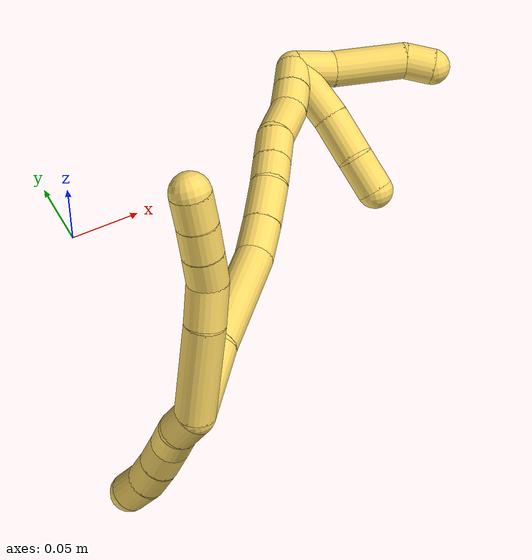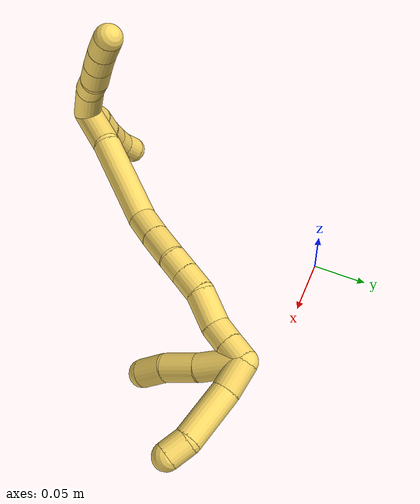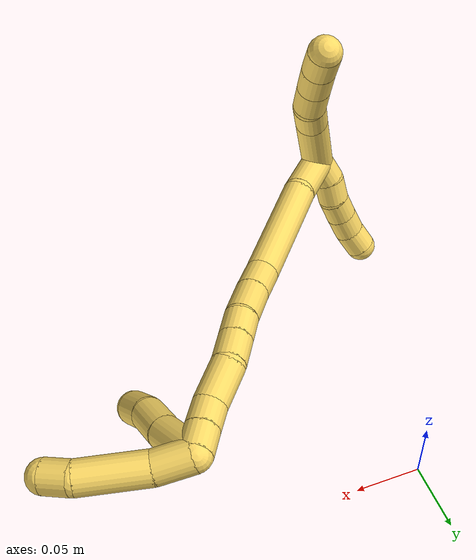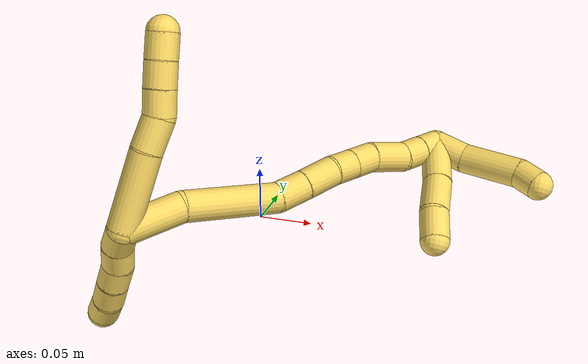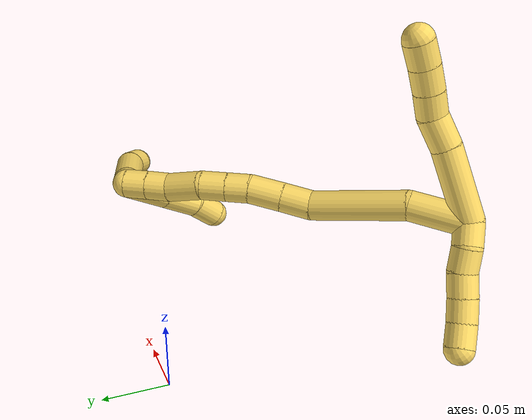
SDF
<sdf version="1.7">
 <world name="default">
  <model name="5">
   <static>0</static>
   <link name="5">
    <collision name="collision-cylinder-e_1_2_8">
     <pose>0.010798 -0.006581 0.02871 0.225347 0.351373 0.040167</pose>
     <geometry><cylinder><radius>0.0125</radius><length>0.062742</length></cylinder></geometry>
     <surface>
      <friction><ode><mu>1.16</mu><mu2>1.16</mu2><slip1>0</slip1><slip2>0</slip2></ode></friction>
      <contact><ode><kp>1e+06</kp><kd>1</kd><max_vel>0</max_vel><min_depth>0.001</min_depth></ode></contact>
     </surface>
    </collision>
    <visual name="visual-cylinder-e_1_2_8">
     <pose>0.010798 -0.006581 0.02871 0.225347 0.351373 0.040167</pose>
     <geometry><cylinder><radius>0.0125</radius><length>0.062742</length></cylinder></geometry>
     <material><ambient>1 0.858824 0.4 1</ambient></material>
    </visual>
    <collision name="collision-cylinder-e_2_8_9">
     <pose>0.025761 -0.014407 0.070029 0.098369 0.317656 0.015769</pose>
     <geometry><cylinder><radius>0.0125</radius><length>0.026677</length></cylinder></geometry>
     <surface>
      <friction><ode><mu>1.16</mu><mu2>1.16</mu2><slip1>0</slip1><slip2>0</slip2></ode></friction>
      <contact><ode><kp>1e+06</kp><kd>1</kd><max_vel>0</max_vel><min_depth>0.001</min_depth></ode></contact>
     </surface>
    </collision>
    <visual name="visual-cylinder-e_2_8_9">
     <pose>0.025761 -0.014407 0.070029 0.098369 0.317656 0.015769</pose>
     <geometry><cylinder><radius>0.0125</radius><length>0.026677</length></cylinder></geometry>
     <material><ambient>1 0.858824 0.4 1</ambient></material>
    </visual>
    <collision name="collision-cylinder-e_3_9_10">
     <pose>0.031098 -0.019345 0.092057 0.373682 0.11523 0.021807</pose>
     <geometry><cylinder><radius>0.0125</radius><length>0.020368</length></cylinder></geometry>
     <surface>
      <friction><ode><mu>1.16</mu><mu2>1.16</mu2><slip1>0</slip1><slip2>0</slip2></ode></friction>
      <contact><ode><kp>1e+06</kp><kd>1</kd><max_vel>0</max_vel><min_depth>0.001</min_depth></ode></contact>
     </surface>
    </collision>
    <visual name="visual-cylinder-e_3_9_10">
     <pose>0.031098 -0.019345 0.092057 0.373682 0.11523 0.021807</pose>
     <geometry><cylinder><radius>0.0125</radius><length>0.020368</length></cylinder></geometry>
     <material><ambient>1 0.858824 0.4 1</ambient></material>
    </visual>
    <collision name="collision-cylinder-e_4_10_11">
     <pose>0.033321 -0.026276 0.110974 0.328631 0.104483 0.01734</pose>
     <geometry><cylinder><radius>0.0125</radius><length>0.02018</length></cylinder></geometry>
     <surface>
      <friction><ode><mu>1.16</mu><mu2>1.16</mu2><slip1>0</slip1><slip2>0</slip2></ode></friction>
      <contact><ode><kp>1e+06</kp><kd>1</kd><max_vel>0</max_vel><min_depth>0.001</min_depth></ode></contact>
     </surface>
    </collision>
    <visual name="visual-cylinder-e_4_10_11">
     <pose>0.033321 -0.026276 0.110974 0.328631 0.104483 0.01734</pose>
     <geometry><cylinder><radius>0.0125</radius><length>0.02018</length></cylinder></geometry>
     <material><ambient>1 0.858824 0.4 1</ambient></material>
    </visual>
    <collision name="collision-cylinder-e_5_11_6">
     <pose>0.035073 -0.032244 0.130084 0.276617 0.069847 0.009726</pose>
     <geometry><cylinder><radius>0.0125</radius><length>0.020033</length></cylinder></geometry>
     <surface>
      <friction><ode><mu>1.16</mu><mu2>1.16</mu2><slip1>0</slip1><slip2>0</slip2></ode></friction>
      <contact><ode><kp>1e+06</kp><kd>1</kd><max_vel>0</max_vel><min_depth>0.001</min_depth></ode></contact>
     </surface>
    </collision>
    <visual name="visual-cylinder-e_5_11_6">
     <pose>0.035073 -0.032244 0.130084 0.276617 0.069847 0.009726</pose>
     <geometry><cylinder><radius>0.0125</radius><length>0.020033</length></cylinder></geometry>
     <material><ambient>1 0.858824 0.4 1</ambient></material>
    </visual>
    <collision name="collision-cylinder-e_1_2_12">
     <pose>-0.006778 0.00497 -0.005419 -2.3994 -0.744716 1.57452</pose>
     <geometry><cylinder><radius>0.0125</radius><length>0.02</length></cylinder></geometry>
     <surface>
      <friction><ode><mu>1.16</mu><mu2>1.16</mu2><slip1>0</slip1><slip2>0</slip2></ode></friction>
      <contact><ode><kp>1e+06</kp><kd>1</kd><max_vel>0</max_vel><min_depth>0.001</min_depth></ode></contact>
     </surface>
    </collision>
    <visual name="visual-cylinder-e_1_2_12">
     <pose>-0.006778 0.00497 -0.005419 -2.3994 -0.744716 1.57452</pose>
     <geometry><cylinder><radius>0.0125</radius><length>0.02</length></cylinder></geometry>
     <material><ambient>1 0.858824 0.4 1</ambient></material>
    </visual>
    <collision name="collision-cylinder-e_2_12_13">
     <pose>-0.018157 0.01618 -0.017153 -2.36218 -0.478198 1.07127</pose>
     <geometry><cylinder><radius>0.0125</radius><length>0.02</length></cylinder></geometry>
     <surface>
      <friction><ode><mu>1.16</mu><mu2>1.16</mu2><slip1>0</slip1><slip2>0</slip2></ode></friction>
      <contact><ode><kp>1e+06</kp><kd>1</kd><max_vel>0</max_vel><min_depth>0.001</min_depth></ode></contact>
     </surface>
    </collision>
    <visual name="visual-cylinder-e_2_12_13">
     <pose>-0.018157 0.01618 -0.017153 -2.36218 -0.478198 1.07127</pose>
     <geometry><cylinder><radius>0.0125</radius><length>0.02</length></cylinder></geometry>
     <material><ambient>1 0.858824 0.4 1</ambient></material>
    </visual>
    <collision name="collision-cylinder-e_3_13_14">
     <pose>-0.028518 0.026788 -0.030379 -2.57789 -0.61378 1.66091</pose>
     <geometry><cylinder><radius>0.0125</radius><length>0.02</length></cylinder></geometry>
     <surface>
      <friction><ode><mu>1.16</mu><mu2>1.16</mu2><slip1>0</slip1><slip2>0</slip2></ode></friction>
      <contact><ode><kp>1e+06</kp><kd>1</kd><max_vel>0</max_vel><min_depth>0.001</min_depth></ode></contact>
     </surface>
    </collision>
    <visual name="visual-cylinder-e_3_13_14">
     <pose>-0.028518 0.026788 -0.030379 -2.57789 -0.61378 1.66091</pose>
     <geometry><cylinder><radius>0.0125</radius><length>0.02</length></cylinder></geometry>
     <material><ambient>1 0.858824 0.4 1</ambient></material>
    </visual>
    <collision name="collision-cylinder-e_4_14_15">
     <pose>-0.040338 0.035983 -0.043611 -2.4895 -0.651 1.569</pose>
     <geometry><cylinder><radius>0.0125</radius><length>0.02</length></cylinder></geometry>
     <surface>
      <friction><ode><mu>1.16</mu><mu2>1.16</mu2><slip1>0</slip1><slip2>0</slip2></ode></friction>
      <contact><ode><kp>1e+06</kp><kd>1</kd><max_vel>0</max_vel><min_depth>0.001</min_depth></ode></contact>
     </surface>
    </collision>
    <visual name="visual-cylinder-e_4_14_15">
     <pose>-0.040338 0.035983 -0.043611 -2.4895 -0.651 1.569</pose>
     <geometry><cylinder><radius>0.0125</radius><length>0.02</length></cylinder></geometry>
     <material><ambient>1 0.858824 0.4 1</ambient></material>
    </visual>
    <collision name="collision-cylinder-e_5_15_5">
     <pose>-0.05364 0.045844 -0.054646 -2.32331 -0.809952 1.55933</pose>
     <geometry><cylinder><radius>0.0125</radius><length>0.02</length></cylinder></geometry>
     <surface>
      <friction><ode><mu>1.16</mu><mu2>1.16</mu2><slip1>0</slip1><slip2>0</slip2></ode></friction>
      <contact><ode><kp>1e+06</kp><kd>1</kd><max_vel>0</max_vel><min_depth>0.001</min_depth></ode></contact>
     </surface>
    </collision>
    <visual name="visual-cylinder-e_5_15_5">
     <pose>-0.05364 0.045844 -0.054646 -2.32331 -0.809952 1.55933</pose>
     <geometry><cylinder><radius>0.0125</radius><length>0.02</length></cylinder></geometry>
     <material><ambient>1 0.858824 0.4 1</ambient></material>
    </visual>
    <collision name="collision-cylinder-e_1_2_16">
     <pose>0.009079 0.017697 0.013727 -0.91106 0.38513 -0.190462</pose>
     <geometry><cylinder><radius>0.0125</radius><length>0.048333</length></cylinder></geometry>
     <surface>
      <friction><ode><mu>1.16</mu><mu2>1.16</mu2><slip1>0</slip1><slip2>0</slip2></ode></friction>
      <contact><ode><kp>1e+06</kp><kd>1</kd><max_vel>0</max_vel><min_depth>0.001</min_depth></ode></contact>
     </surface>
    </collision>
    <visual name="visual-cylinder-e_1_2_16">
     <pose>0.009079 0.017697 0.013727 -0.91106 0.38513 -0.190462</pose>
     <geometry><cylinder><radius>0.0125</radius><length>0.048333</length></cylinder></geometry>
     <material><ambient>1 0.858824 0.4 1</ambient></material>
    </visual>
    <collision name="collision-cylinder-e_2_16_17">
     <pose>0.031346 0.071838 0.040742 -1.22116 0.327722 -0.230384</pose>
     <geometry><cylinder><radius>0.0125</radius><length>0.081944</length></cylinder></geometry>
     <surface>
      <friction><ode><mu>1.16</mu><mu2>1.16</mu2><slip1>0</slip1><slip2>0</slip2></ode></friction>
      <contact><ode><kp>1e+06</kp><kd>1</kd><max_vel>0</max_vel><min_depth>0.001</min_depth></ode></contact>
     </surface>
    </collision>
    <visual name="visual-cylinder-e_2_16_17">
     <pose>0.031346 0.071838 0.040742 -1.22116 0.327722 -0.230384</pose>
     <geometry><cylinder><radius>0.0125</radius><length>0.081944</length></cylinder></geometry>
     <material><ambient>1 0.858824 0.4 1</ambient></material>
    </visual>
    <collision name="collision-cylinder-e_3_17_18">
     <pose>0.048717 0.117618 0.061797 -0.876909 0.331682 -0.156644</pose>
     <geometry><cylinder><radius>0.0125</radius><length>0.02569</length></cylinder></geometry>
     <surface>
      <friction><ode><mu>1.16</mu><mu2>1.16</mu2><slip1>0</slip1><slip2>0</slip2></ode></friction>
      <contact><ode><kp>1e+06</kp><kd>1</kd><max_vel>0</max_vel><min_depth>0.001</min_depth></ode></contact>
     </surface>
    </collision>
    <visual name="visual-cylinder-e_3_17_18">
     <pose>0.048717 0.117618 0.061797 -0.876909 0.331682 -0.156644</pose>
     <geometry><cylinder><radius>0.0125</radius><length>0.02569</length></cylinder></geometry>
     <material><ambient>1 0.858824 0.4 1</ambient></material>
    </visual>
    <collision name="collision-cylinder-e_4_18_19">
     <pose>0.057094 0.137561 0.078577 -0.866443 0.29266 -0.136127</pose>
     <geometry><cylinder><radius>0.0125</radius><length>0.029074</length></cylinder></geometry>
     <surface>
      <friction><ode><mu>1.16</mu><mu2>1.16</mu2><slip1>0</slip1><slip2>0</slip2></ode></friction>
      <contact><ode><kp>1e+06</kp><kd>1</kd><max_vel>0</max_vel><min_depth>0.001</min_depth></ode></contact>
     </surface>
    </collision>
    <visual name="visual-cylinder-e_4_18_19">
     <pose>0.057094 0.137561 0.078577 -0.866443 0.29266 -0.136127</pose>
     <geometry><cylinder><radius>0.0125</radius><length>0.029074</length></cylinder></geometry>
     <material><ambient>1 0.858824 0.4 1</ambient></material>
    </visual>
    <collision name="collision-cylinder-e_5_19_20">
     <pose>0.063255 0.156604 0.092751 -1.02183 0.196407 -0.110341</pose>
     <geometry><cylinder><radius>0.0125</radius><length>0.020166</length></cylinder></geometry>
     <surface>
      <friction><ode><mu>1.16</mu><mu2>1.16</mu2><slip1>0</slip1><slip2>0</slip2></ode></friction>
      <contact><ode><kp>1e+06</kp><kd>1</kd><max_vel>0</max_vel><min_depth>0.001</min_depth></ode></contact>
     </surface>
    </collision>
    <visual name="visual-cylinder-e_5_19_20">
     <pose>0.063255 0.156604 0.092751 -1.02183 0.196407 -0.110341</pose>
     <geometry><cylinder><radius>0.0125</radius><length>0.020166</length></cylinder></geometry>
     <material><ambient>1 0.858824 0.4 1</ambient></material>
    </visual>
    <collision name="collision-cylinder-e_6_20_21">
     <pose>0.067413 0.174383 0.103649 -1.02008 0.19716 -0.110539</pose>
     <geometry><cylinder><radius>0.0125</radius><length>0.022362</length></cylinder></geometry>
     <surface>
      <friction><ode><mu>1.16</mu><mu2>1.16</mu2><slip1>0</slip1><slip2>0</slip2></ode></friction>
      <contact><ode><kp>1e+06</kp><kd>1</kd><max_vel>0</max_vel><min_depth>0.001</min_depth></ode></contact>
     </surface>
    </collision>
    <visual name="visual-cylinder-e_6_20_21">
     <pose>0.067413 0.174383 0.103649 -1.02008 0.19716 -0.110539</pose>
     <geometry><cylinder><radius>0.0125</radius><length>0.022362</length></cylinder></geometry>
     <material><ambient>1 0.858824 0.4 1</ambient></material>
    </visual>
    <collision name="collision-cylinder-e_7_21_22">
     <pose>0.074771 0.198421 0.113779 -1.28028 0.324986 -0.242989</pose>
     <geometry><cylinder><radius>0.0125</radius><length>0.032368</length></cylinder></geometry>
     <surface>
      <friction><ode><mu>1.16</mu><mu2>1.16</mu2><slip1>0</slip1><slip2>0</slip2></ode></friction>
      <contact><ode><kp>1e+06</kp><kd>1</kd><max_vel>0</max_vel><min_depth>0.001</min_depth></ode></contact>
     </surface>
    </collision>
    <visual name="visual-cylinder-e_7_21_22">
     <pose>0.074771 0.198421 0.113779 -1.28028 0.324986 -0.242989</pose>
     <geometry><cylinder><radius>0.0125</radius><length>0.032368</length></cylinder></geometry>
     <material><ambient>1 0.858824 0.4 1</ambient></material>
    </visual>
    <collision name="collision-cylinder-e_8_22_23">
     <pose>0.08217 0.221395 0.123362 -1.01095 0.224538 -0.12463</pose>
     <geometry><cylinder><radius>0.0125</radius><length>0.020047</length></cylinder></geometry>
     <surface>
      <friction><ode><mu>1.16</mu><mu2>1.16</mu2><slip1>0</slip1><slip2>0</slip2></ode></friction>
      <contact><ode><kp>1e+06</kp><kd>1</kd><max_vel>0</max_vel><min_depth>0.001</min_depth></ode></contact>
     </surface>
    </collision>
    <visual name="visual-cylinder-e_8_22_23">
     <pose>0.08217 0.221395 0.123362 -1.01095 0.224538 -0.12463</pose>
     <geometry><cylinder><radius>0.0125</radius><length>0.020047</length></cylinder></geometry>
     <material><ambient>1 0.858824 0.4 1</ambient></material>
    </visual>
    <collision name="collision-cylinder-e_9_23_1">
     <pose>0.086407 0.238008 0.13372 -1.01562 0.201663 -0.112485</pose>
     <geometry><cylinder><radius>0.0125</radius><length>0.020016</length></cylinder></geometry>
     <surface>
      <friction><ode><mu>1.16</mu><mu2>1.16</mu2><slip1>0</slip1><slip2>0</slip2></ode></friction>
      <contact><ode><kp>1e+06</kp><kd>1</kd><max_vel>0</max_vel><min_depth>0.001</min_depth></ode></contact>
     </surface>
    </collision>
    <visual name="visual-cylinder-e_9_23_1">
     <pose>0.086407 0.238008 0.13372 -1.01562 0.201663 -0.112485</pose>
     <geometry><cylinder><radius>0.0125</radius><length>0.020016</length></cylinder></geometry>
     <material><ambient>1 0.858824 0.4 1</ambient></material>
    </visual>
    <collision name="collision-cylinder-e_1_1_24">
     <pose>0.100553 0.252122 0.134702 -2.19749 1.03934 -1.68441</pose>
     <geometry><cylinder><radius>0.0125</radius><length>0.028168</length></cylinder></geometry>
     <surface>
      <friction><ode><mu>1.16</mu><mu2>1.16</mu2><slip1>0</slip1><slip2>0</slip2></ode></friction>
      <contact><ode><kp>1e+06</kp><kd>1</kd><max_vel>0</max_vel><min_depth>0.001</min_depth></ode></contact>
     </surface>
    </collision>
    <visual name="visual-cylinder-e_1_1_24">
     <pose>0.100553 0.252122 0.134702 -2.19749 1.03934 -1.68441</pose>
     <geometry><cylinder><radius>0.0125</radius><length>0.028168</length></cylinder></geometry>
     <material><ambient>1 0.858824 0.4 1</ambient></material>
    </visual>
    <collision name="collision-cylinder-e_2_24_25">
     <pose>0.137273 0.264352 0.126413 -2.13739 1.26932 -1.86012</pose>
     <geometry><cylinder><radius>0.0125</radius><length>0.051479</length></cylinder></geometry>
     <surface>
      <friction><ode><mu>1.16</mu><mu2>1.16</mu2><slip1>0</slip1><slip2>0</slip2></ode></friction>
      <contact><ode><kp>1e+06</kp><kd>1</kd><max_vel>0</max_vel><min_depth>0.001</min_depth></ode></contact>
     </surface>
    </collision>
    <visual name="visual-cylinder-e_2_24_25">
     <pose>0.137273 0.264352 0.126413 -2.13739 1.26932 -1.86012</pose>
     <geometry><cylinder><radius>0.0125</radius><length>0.051479</length></cylinder></geometry>
     <material><ambient>1 0.858824 0.4 1</ambient></material>
    </visual>
    <collision name="collision-cylinder-e_3_25_4">
     <pose>0.170934 0.271471 0.11777 -2.99486 1.10276 -2.9037</pose>
     <geometry><cylinder><radius>0.0125</radius><length>0.020353</length></cylinder></geometry>
     <surface>
      <friction><ode><mu>1.16</mu><mu2>1.16</mu2><slip1>0</slip1><slip2>0</slip2></ode></friction>
      <contact><ode><kp>1e+06</kp><kd>1</kd><max_vel>0</max_vel><min_depth>0.001</min_depth></ode></contact>
     </surface>
    </collision>
    <visual name="visual-cylinder-e_3_25_4">
     <pose>0.170934 0.271471 0.11777 -2.99486 1.10276 -2.9037</pose>
     <geometry><cylinder><radius>0.0125</radius><length>0.020353</length></cylinder></geometry>
     <material><ambient>1 0.858824 0.4 1</ambient></material>
    </visual>
    <collision name="collision-cylinder-e_1_1_26">
     <pose>0.096929 0.24059 0.120639 2.83635 0.418852 1.88867</pose>
     <geometry><cylinder><radius>0.0125</radius><length>0.041888</length></cylinder></geometry>
     <surface>
      <friction><ode><mu>1.16</mu><mu2>1.16</mu2><slip1>0</slip1><slip2>0</slip2></ode></friction>
      <contact><ode><kp>1e+06</kp><kd>1</kd><max_vel>0</max_vel><min_depth>0.001</min_depth></ode></contact>
     </surface>
    </collision>
    <visual name="visual-cylinder-e_1_1_26">
     <pose>0.096929 0.24059 0.120639 2.83635 0.418852 1.88867</pose>
     <geometry><cylinder><radius>0.0125</radius><length>0.041888</length></cylinder></geometry>
     <material><ambient>1 0.858824 0.4 1</ambient></material>
    </visual>
    <collision name="collision-cylinder-e_2_26_27">
     <pose>0.110572 0.229106 0.088291 2.75533 0.324768 1.3946</pose>
     <geometry><cylinder><radius>0.0125</radius><length>0.03212</length></cylinder></geometry>
     <surface>
      <friction><ode><mu>1.16</mu><mu2>1.16</mu2><slip1>0</slip1><slip2>0</slip2></ode></friction>
      <contact><ode><kp>1e+06</kp><kd>1</kd><max_vel>0</max_vel><min_depth>0.001</min_depth></ode></contact>
     </surface>
    </collision>
    <visual name="visual-cylinder-e_2_26_27">
     <pose>0.110572 0.229106 0.088291 2.75533 0.324768 1.3946</pose>
     <geometry><cylinder><radius>0.0125</radius><length>0.03212</length></cylinder></geometry>
     <material><ambient>1 0.858824 0.4 1</ambient></material>
    </visual>
    <collision name="collision-cylinder-e_3_27_3">
     <pose>0.119805 0.221609 0.061989 2.99811 0.321607 2.30749</pose>
     <geometry><cylinder><radius>0.0125</radius><length>0.025992</length></cylinder></geometry>
     <surface>
      <friction><ode><mu>1.16</mu><mu2>1.16</mu2><slip1>0</slip1><slip2>0</slip2></ode></friction>
      <contact><ode><kp>1e+06</kp><kd>1</kd><max_vel>0</max_vel><min_depth>0.001</min_depth></ode></contact>
     </surface>
    </collision>
    <visual name="visual-cylinder-e_3_27_3">
     <pose>0.119805 0.221609 0.061989 2.99811 0.321607 2.30749</pose>
     <geometry><cylinder><radius>0.0125</radius><length>0.025992</length></cylinder></geometry>
     <material><ambient>1 0.858824 0.4 1</ambient></material>
    </visual>
    <collision name="collision-sphere-3">
     <pose>0.123913 0.219846 0.049786 0 -0 0</pose>
     <geometry><sphere><radius>0.0125</radius></sphere></geometry>
     <surface>
      <friction><ode><mu>1.16</mu><mu2>1.16</mu2><slip1>0</slip1><slip2>0</slip2></ode></friction>
      <contact><ode><kp>1e+06</kp><kd>1</kd><max_vel>0</max_vel><min_depth>0.001</min_depth></ode></contact>
     </surface>
    </collision>
    <visual name="visual-sphere-3">
     <pose>0.123913 0.219846 0.049786 0 -0 0</pose>
     <geometry><sphere><radius>0.0125</radius></sphere></geometry>
     <material><ambient>1 0.858824 0.4 1</ambient></material>
    </visual>
    <collision name="collision-sphere-27">
     <pose>0.115697 0.223372 0.074192 0 -0 0</pose>
     <geometry><sphere><radius>0.0125</radius></sphere></geometry>
     <surface>
      <friction><ode><mu>1.16</mu><mu2>1.16</mu2><slip1>0</slip1><slip2>0</slip2></ode></friction>
      <contact><ode><kp>1e+06</kp><kd>1</kd><max_vel>0</max_vel><min_depth>0.001</min_depth></ode></contact>
     </surface>
    </collision>
    <visual name="visual-sphere-27">
     <pose>0.115697 0.223372 0.074192 0 -0 0</pose>
     <geometry><sphere><radius>0.0125</radius></sphere></geometry>
     <material><ambient>1 0.858824 0.4 1</ambient></material>
    </visual>
    <collision name="collision-sphere-26">
     <pose>0.105448 0.23484 0.10239 0 -0 0</pose>
     <geometry><sphere><radius>0.0125</radius></sphere></geometry>
     <surface>
      <friction><ode><mu>1.16</mu><mu2>1.16</mu2><slip1>0</slip1><slip2>0</slip2></ode></friction>
      <contact><ode><kp>1e+06</kp><kd>1</kd><max_vel>0</max_vel><min_depth>0.001</min_depth></ode></contact>
     </surface>
    </collision>
    <visual name="visual-sphere-26">
     <pose>0.105448 0.23484 0.10239 0 -0 0</pose>
     <geometry><sphere><radius>0.0125</radius></sphere></geometry>
     <material><ambient>1 0.858824 0.4 1</ambient></material>
    </visual>
    <collision name="collision-sphere-4">
     <pose>0.180016 0.272143 0.113228 0 -0 0</pose>
     <geometry><sphere><radius>0.0125</radius></sphere></geometry>
     <surface>
      <friction><ode><mu>1.16</mu><mu2>1.16</mu2><slip1>0</slip1><slip2>0</slip2></ode></friction>
      <contact><ode><kp>1e+06</kp><kd>1</kd><max_vel>0</max_vel><min_depth>0.001</min_depth></ode></contact>
     </surface>
    </collision>
    <visual name="visual-sphere-4">
     <pose>0.180016 0.272143 0.113228 0 -0 0</pose>
     <geometry><sphere><radius>0.0125</radius></sphere></geometry>
     <material><ambient>1 0.858824 0.4 1</ambient></material>
    </visual>
    <collision name="collision-sphere-25">
     <pose>0.161852 0.2708 0.122311 0 -0 0</pose>
     <geometry><sphere><radius>0.0125</radius></sphere></geometry>
     <surface>
      <friction><ode><mu>1.16</mu><mu2>1.16</mu2><slip1>0</slip1><slip2>0</slip2></ode></friction>
      <contact><ode><kp>1e+06</kp><kd>1</kd><max_vel>0</max_vel><min_depth>0.001</min_depth></ode></contact>
     </surface>
    </collision>
    <visual name="visual-sphere-25">
     <pose>0.161852 0.2708 0.122311 0 -0 0</pose>
     <geometry><sphere><radius>0.0125</radius></sphere></geometry>
     <material><ambient>1 0.858824 0.4 1</ambient></material>
    </visual>
    <collision name="collision-sphere-24">
     <pose>0.112694 0.257903 0.130516 0 -0 0</pose>
     <geometry><sphere><radius>0.0125</radius></sphere></geometry>
     <surface>
      <friction><ode><mu>1.16</mu><mu2>1.16</mu2><slip1>0</slip1><slip2>0</slip2></ode></friction>
      <contact><ode><kp>1e+06</kp><kd>1</kd><max_vel>0</max_vel><min_depth>0.001</min_depth></ode></contact>
     </surface>
    </collision>
    <visual name="visual-sphere-24">
     <pose>0.112694 0.257903 0.130516 0 -0 0</pose>
     <geometry><sphere><radius>0.0125</radius></sphere></geometry>
     <material><ambient>1 0.858824 0.4 1</ambient></material>
    </visual>
    <collision name="collision-sphere-1">
     <pose>0.088411 0.24634 0.138888 0 -0 0</pose>
     <geometry><sphere><radius>0.0125</radius></sphere></geometry>
     <surface>
      <friction><ode><mu>1.16</mu><mu2>1.16</mu2><slip1>0</slip1><slip2>0</slip2></ode></friction>
      <contact><ode><kp>1e+06</kp><kd>1</kd><max_vel>0</max_vel><min_depth>0.001</min_depth></ode></contact>
     </surface>
    </collision>
    <visual name="visual-sphere-1">
     <pose>0.088411 0.24634 0.138888 0 -0 0</pose>
     <geometry><sphere><radius>0.0125</radius></sphere></geometry>
     <material><ambient>1 0.858824 0.4 1</ambient></material>
    </visual>
    <collision name="collision-sphere-23">
     <pose>0.084402 0.229675 0.128551 0 -0 0</pose>
     <geometry><sphere><radius>0.0125</radius></sphere></geometry>
     <surface>
      <friction><ode><mu>1.16</mu><mu2>1.16</mu2><slip1>0</slip1><slip2>0</slip2></ode></friction>
      <contact><ode><kp>1e+06</kp><kd>1</kd><max_vel>0</max_vel><min_depth>0.001</min_depth></ode></contact>
     </surface>
    </collision>
    <visual name="visual-sphere-23">
     <pose>0.084402 0.229675 0.128551 0 -0 0</pose>
     <geometry><sphere><radius>0.0125</radius></sphere></geometry>
     <material><ambient>1 0.858824 0.4 1</ambient></material>
    </visual>
    <collision name="collision-sphere-22">
     <pose>0.079938 0.213115 0.118173 0 -0 0</pose>
     <geometry><sphere><radius>0.0125</radius></sphere></geometry>
     <surface>
      <friction><ode><mu>1.16</mu><mu2>1.16</mu2><slip1>0</slip1><slip2>0</slip2></ode></friction>
      <contact><ode><kp>1e+06</kp><kd>1</kd><max_vel>0</max_vel><min_depth>0.001</min_depth></ode></contact>
     </surface>
    </collision>
    <visual name="visual-sphere-22">
     <pose>0.079938 0.213115 0.118173 0 -0 0</pose>
     <geometry><sphere><radius>0.0125</radius></sphere></geometry>
     <material><ambient>1 0.858824 0.4 1</ambient></material>
    </visual>
    <collision name="collision-sphere-21">
     <pose>0.069603 0.183726 0.109386 0 -0 0</pose>
     <geometry><sphere><radius>0.0125</radius></sphere></geometry>
     <surface>
      <friction><ode><mu>1.16</mu><mu2>1.16</mu2><slip1>0</slip1><slip2>0</slip2></ode></friction>
      <contact><ode><kp>1e+06</kp><kd>1</kd><max_vel>0</max_vel><min_depth>0.001</min_depth></ode></contact>
     </surface>
    </collision>
    <visual name="visual-sphere-21">
     <pose>0.069603 0.183726 0.109386 0 -0 0</pose>
     <geometry><sphere><radius>0.0125</radius></sphere></geometry>
     <material><ambient>1 0.858824 0.4 1</ambient></material>
    </visual>
    <collision name="collision-sphere-6">
     <pose>0.035772 -0.034973 0.139696 0 -0 0</pose>
     <geometry><sphere><radius>0.0125</radius></sphere></geometry>
     <surface>
      <friction><ode><mu>1.16</mu><mu2>1.16</mu2><slip1>0</slip1><slip2>0</slip2></ode></friction>
      <contact><ode><kp>1e+06</kp><kd>1</kd><max_vel>0</max_vel><min_depth>0.001</min_depth></ode></contact>
     </surface>
    </collision>
    <visual name="visual-sphere-6">
     <pose>0.035772 -0.034973 0.139696 0 -0 0</pose>
     <geometry><sphere><radius>0.0125</radius></sphere></geometry>
     <material><ambient>1 0.858824 0.4 1</ambient></material>
    </visual>
    <collision name="collision-sphere-11">
     <pose>0.034374 -0.029515 0.120472 0 -0 0</pose>
     <geometry><sphere><radius>0.0125</radius></sphere></geometry>
     <surface>
      <friction><ode><mu>1.16</mu><mu2>1.16</mu2><slip1>0</slip1><slip2>0</slip2></ode></friction>
      <contact><ode><kp>1e+06</kp><kd>1</kd><max_vel>0</max_vel><min_depth>0.001</min_depth></ode></contact>
     </surface>
    </collision>
    <visual name="visual-sphere-11">
     <pose>0.034374 -0.029515 0.120472 0 -0 0</pose>
     <geometry><sphere><radius>0.0125</radius></sphere></geometry>
     <material><ambient>1 0.858824 0.4 1</ambient></material>
    </visual>
    <collision name="collision-sphere-10">
     <pose>0.032269 -0.023038 0.101475 0 -0 0</pose>
     <geometry><sphere><radius>0.0125</radius></sphere></geometry>
     <surface>
      <friction><ode><mu>1.16</mu><mu2>1.16</mu2><slip1>0</slip1><slip2>0</slip2></ode></friction>
      <contact><ode><kp>1e+06</kp><kd>1</kd><max_vel>0</max_vel><min_depth>0.001</min_depth></ode></contact>
     </surface>
    </collision>
    <visual name="visual-sphere-10">
     <pose>0.032269 -0.023038 0.101475 0 -0 0</pose>
     <geometry><sphere><radius>0.0125</radius></sphere></geometry>
     <material><ambient>1 0.858824 0.4 1</ambient></material>
    </visual>
    <collision name="collision-sphere-9">
     <pose>0.029927 -0.015652 0.082639 0 -0 0</pose>
     <geometry><sphere><radius>0.0125</radius></sphere></geometry>
     <surface>
      <friction><ode><mu>1.16</mu><mu2>1.16</mu2><slip1>0</slip1><slip2>0</slip2></ode></friction>
      <contact><ode><kp>1e+06</kp><kd>1</kd><max_vel>0</max_vel><min_depth>0.001</min_depth></ode></contact>
     </surface>
    </collision>
    <visual name="visual-sphere-9">
     <pose>0.029927 -0.015652 0.082639 0 -0 0</pose>
     <geometry><sphere><radius>0.0125</radius></sphere></geometry>
     <material><ambient>1 0.858824 0.4 1</ambient></material>
    </visual>
    <collision name="collision-sphere-2">
     <geometry><sphere><radius>0.0125</radius></sphere></geometry>
     <surface>
      <friction><ode><mu>1.16</mu><mu2>1.16</mu2><slip1>0</slip1><slip2>0</slip2></ode></friction>
      <contact><ode><kp>1e+06</kp><kd>1</kd><max_vel>0</max_vel><min_depth>0.001</min_depth></ode></contact>
     </surface>
    </collision>
    <visual name="visual-sphere-2">
     <geometry><sphere><radius>0.0125</radius></sphere></geometry>
     <material><ambient>1 0.858824 0.4 1</ambient></material>
    </visual>
    <collision name="collision-sphere-19">
     <pose>0.061288 0.148168 0.087591 0 -0 0</pose>
     <geometry><sphere><radius>0.0125</radius></sphere></geometry>
     <surface>
      <friction><ode><mu>1.16</mu><mu2>1.16</mu2><slip1>0</slip1><slip2>0</slip2></ode></friction>
      <contact><ode><kp>1e+06</kp><kd>1</kd><max_vel>0</max_vel><min_depth>0.001</min_depth></ode></contact>
     </surface>
    </collision>
    <visual name="visual-sphere-19">
     <pose>0.061288 0.148168 0.087591 0 -0 0</pose>
     <geometry><sphere><radius>0.0125</radius></sphere></geometry>
     <material><ambient>1 0.858824 0.4 1</ambient></material>
    </visual>
    <collision name="collision-sphere-8">
     <pose>0.021595 -0.013163 0.057419 0 -0 0</pose>
     <geometry><sphere><radius>0.0125</radius></sphere></geometry>
     <surface>
      <friction><ode><mu>1.16</mu><mu2>1.16</mu2><slip1>0</slip1><slip2>0</slip2></ode></friction>
      <contact><ode><kp>1e+06</kp><kd>1</kd><max_vel>0</max_vel><min_depth>0.001</min_depth></ode></contact>
     </surface>
    </collision>
    <visual name="visual-sphere-8">
     <pose>0.021595 -0.013163 0.057419 0 -0 0</pose>
     <geometry><sphere><radius>0.0125</radius></sphere></geometry>
     <material><ambient>1 0.858824 0.4 1</ambient></material>
    </visual>
    <collision name="collision-sphere-12">
     <pose>-0.013555 0.00994 -0.010838 0 -0 0</pose>
     <geometry><sphere><radius>0.0125</radius></sphere></geometry>
     <surface>
      <friction><ode><mu>1.16</mu><mu2>1.16</mu2><slip1>0</slip1><slip2>0</slip2></ode></friction>
      <contact><ode><kp>1e+06</kp><kd>1</kd><max_vel>0</max_vel><min_depth>0.001</min_depth></ode></contact>
     </surface>
    </collision>
    <visual name="visual-sphere-12">
     <pose>-0.013555 0.00994 -0.010838 0 -0 0</pose>
     <geometry><sphere><radius>0.0125</radius></sphere></geometry>
     <material><ambient>1 0.858824 0.4 1</ambient></material>
    </visual>
    <collision name="collision-sphere-13">
     <pose>-0.022759 0.02242 -0.023469 0 -0 0</pose>
     <geometry><sphere><radius>0.0125</radius></sphere></geometry>
     <surface>
      <friction><ode><mu>1.16</mu><mu2>1.16</mu2><slip1>0</slip1><slip2>0</slip2></ode></friction>
      <contact><ode><kp>1e+06</kp><kd>1</kd><max_vel>0</max_vel><min_depth>0.001</min_depth></ode></contact>
     </surface>
    </collision>
    <visual name="visual-sphere-13">
     <pose>-0.022759 0.02242 -0.023469 0 -0 0</pose>
     <geometry><sphere><radius>0.0125</radius></sphere></geometry>
     <material><ambient>1 0.858824 0.4 1</ambient></material>
    </visual>
    <collision name="collision-sphere-14">
     <pose>-0.034278 0.031156 -0.037289 0 -0 0</pose>
     <geometry><sphere><radius>0.0125</radius></sphere></geometry>
     <surface>
      <friction><ode><mu>1.16</mu><mu2>1.16</mu2><slip1>0</slip1><slip2>0</slip2></ode></friction>
      <contact><ode><kp>1e+06</kp><kd>1</kd><max_vel>0</max_vel><min_depth>0.001</min_depth></ode></contact>
     </surface>
    </collision>
    <visual name="visual-sphere-14">
     <pose>-0.034278 0.031156 -0.037289 0 -0 0</pose>
     <geometry><sphere><radius>0.0125</radius></sphere></geometry>
     <material><ambient>1 0.858824 0.4 1</ambient></material>
    </visual>
    <collision name="collision-sphere-15">
     <pose>-0.046398 0.040811 -0.049934 0 -0 0</pose>
     <geometry><sphere><radius>0.0125</radius></sphere></geometry>
     <surface>
      <friction><ode><mu>1.16</mu><mu2>1.16</mu2><slip1>0</slip1><slip2>0</slip2></ode></friction>
      <contact><ode><kp>1e+06</kp><kd>1</kd><max_vel>0</max_vel><min_depth>0.001</min_depth></ode></contact>
     </surface>
    </collision>
    <visual name="visual-sphere-15">
     <pose>-0.046398 0.040811 -0.049934 0 -0 0</pose>
     <geometry><sphere><radius>0.0125</radius></sphere></geometry>
     <material><ambient>1 0.858824 0.4 1</ambient></material>
    </visual>
    <collision name="collision-sphere-5">
     <pose>-0.060883 0.050877 -0.059359 0 -0 0</pose>
     <geometry><sphere><radius>0.0125</radius></sphere></geometry>
     <surface>
      <friction><ode><mu>1.16</mu><mu2>1.16</mu2><slip1>0</slip1><slip2>0</slip2></ode></friction>
      <contact><ode><kp>1e+06</kp><kd>1</kd><max_vel>0</max_vel><min_depth>0.001</min_depth></ode></contact>
     </surface>
    </collision>
    <visual name="visual-sphere-5">
     <pose>-0.060883 0.050877 -0.059359 0 -0 0</pose>
     <geometry><sphere><radius>0.0125</radius></sphere></geometry>
     <material><ambient>1 0.858824 0.4 1</ambient></material>
    </visual>
    <collision name="collision-sphere-16">
     <pose>0.018158 0.035393 0.027454 0 -0 0</pose>
     <geometry><sphere><radius>0.0125</radius></sphere></geometry>
     <surface>
      <friction><ode><mu>1.16</mu><mu2>1.16</mu2><slip1>0</slip1><slip2>0</slip2></ode></friction>
      <contact><ode><kp>1e+06</kp><kd>1</kd><max_vel>0</max_vel><min_depth>0.001</min_depth></ode></contact>
     </surface>
    </collision>
    <visual name="visual-sphere-16">
     <pose>0.018158 0.035393 0.027454 0 -0 0</pose>
     <geometry><sphere><radius>0.0125</radius></sphere></geometry>
     <material><ambient>1 0.858824 0.4 1</ambient></material>
    </visual>
    <collision name="collision-sphere-17">
     <pose>0.044535 0.108282 0.054031 0 -0 0</pose>
     <geometry><sphere><radius>0.0125</radius></sphere></geometry>
     <surface>
      <friction><ode><mu>1.16</mu><mu2>1.16</mu2><slip1>0</slip1><slip2>0</slip2></ode></friction>
      <contact><ode><kp>1e+06</kp><kd>1</kd><max_vel>0</max_vel><min_depth>0.001</min_depth></ode></contact>
     </surface>
    </collision>
    <visual name="visual-sphere-17">
     <pose>0.044535 0.108282 0.054031 0 -0 0</pose>
     <geometry><sphere><radius>0.0125</radius></sphere></geometry>
     <material><ambient>1 0.858824 0.4 1</ambient></material>
    </visual>
    <collision name="collision-sphere-18">
     <pose>0.0529 0.126955 0.069564 0 -0 0</pose>
     <geometry><sphere><radius>0.0125</radius></sphere></geometry>
     <surface>
      <friction><ode><mu>1.16</mu><mu2>1.16</mu2><slip1>0</slip1><slip2>0</slip2></ode></friction>
      <contact><ode><kp>1e+06</kp><kd>1</kd><max_vel>0</max_vel><min_depth>0.001</min_depth></ode></contact>
     </surface>
    </collision>
    <visual name="visual-sphere-18">
     <pose>0.0529 0.126955 0.069564 0 -0 0</pose>
     <geometry><sphere><radius>0.0125</radius></sphere></geometry>
     <material><ambient>1 0.858824 0.4 1</ambient></material>
    </visual>
    <collision name="collision-sphere-20">
     <pose>0.065223 0.16504 0.097911 0 -0 0</pose>
     <geometry><sphere><radius>0.0125</radius></sphere></geometry>
     <surface>
      <friction><ode><mu>1.16</mu><mu2>1.16</mu2><slip1>0</slip1><slip2>0</slip2></ode></friction>
      <contact><ode><kp>1e+06</kp><kd>1</kd><max_vel>0</max_vel><min_depth>0.001</min_depth></ode></contact>
     </surface>
    </collision>
    <visual name="visual-sphere-20">
     <pose>0.065223 0.16504 0.097911 0 -0 0</pose>
     <geometry><sphere><radius>0.0125</radius></sphere></geometry>
     <material><ambient>1 0.858824 0.4 1</ambient></material>
    </visual>
    <inertial>
     <pose>0.052036 0.114808 0.06728 0 -0 0</pose>
     <mass>0.75</mass>
     <inertia>
      <ixx>0.000108</ixx>
      <ixy>0</ixy>
      <ixz>0</ixz>
      <iyy>0.000107</iyy>
      <iyz>0</iyz>
      <izz>-0.000106</izz>
     </inertia>
    </inertial>
   </link>
   <pose>-0.019905 -0.239838 0.101296 -0.59268 -0.228523 -0.373206</pose>
  </model>
 </world>
</sdf>
